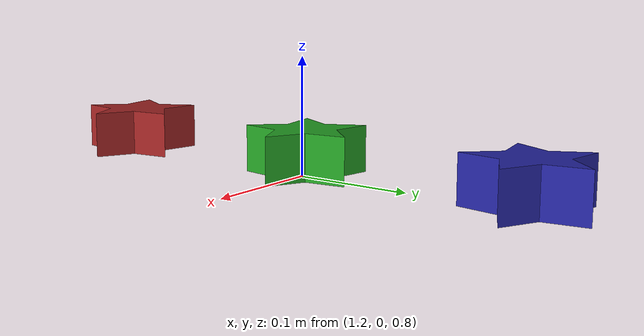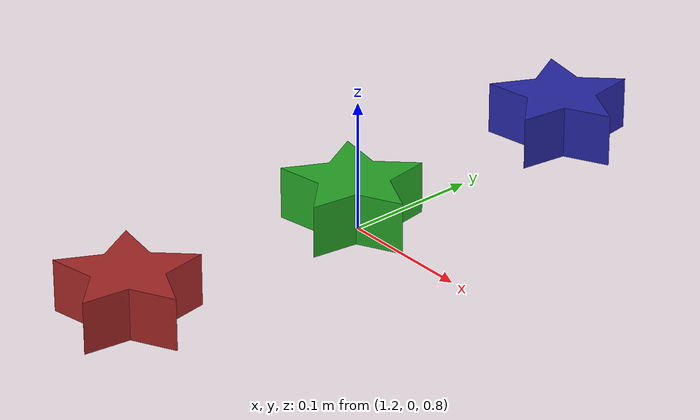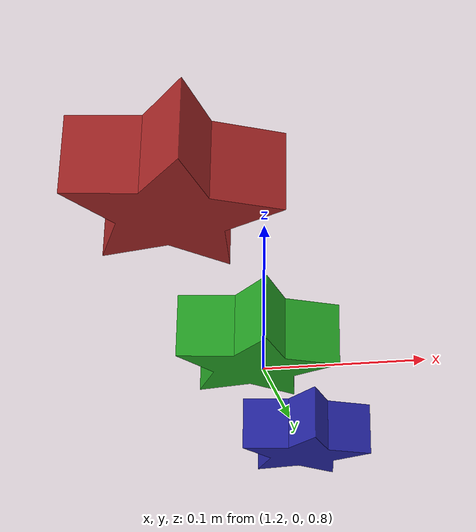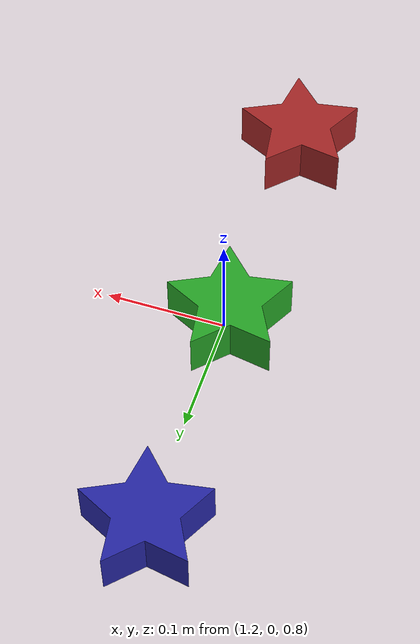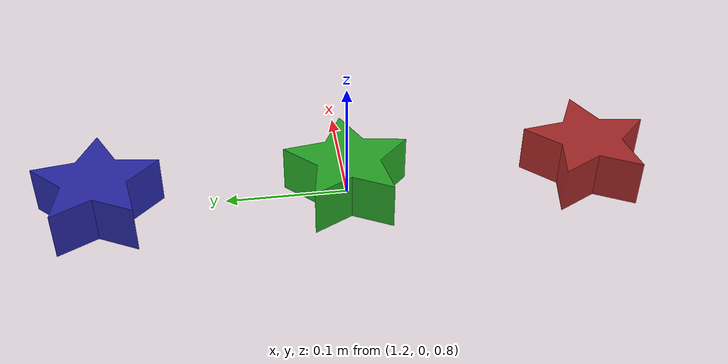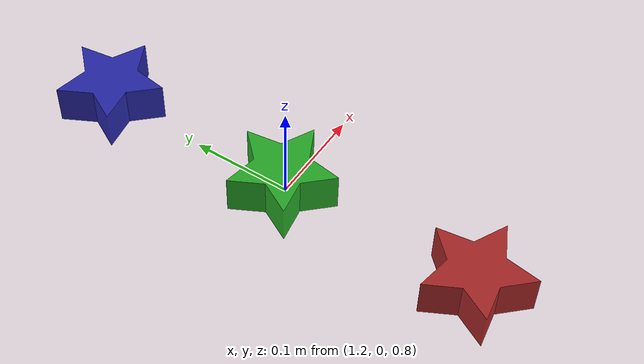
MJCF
<mujoco model="obj_star">
  <default>
    <default class="obj_star_visual">
      <geom group="2" type="mesh" contype="0" conaffinity="0"/>
    </default>
    <default class="obj_star_collision">
      <geom group="3" type="mesh"/>
    </default>
  </default>
  <asset>
    <mesh file="obj_star.obj" scale="0.005 0.005 0.002"/>
    <mesh file="obj_star_collision_0.obj" scale="0.005 0.005 0.002"/>
    <mesh file="obj_star_collision_1.obj" scale="0.005 0.005 0.002"/>
    <mesh file="obj_star_collision_2.obj" scale="0.005 0.005 0.002"/>
    <mesh file="obj_star_collision_3.obj" scale="0.005 0.005 0.002"/>
    <mesh file="obj_star_collision_4.obj" scale="0.005 0.005 0.002"/>
    <mesh file="obj_star_collision_5.obj" scale="0.005 0.005 0.002"/>
    <mesh file="obj_star_collision_6.obj" scale="0.005 0.005 0.002"/>
    <mesh file="obj_star_collision_7.obj" scale="0.005 0.005 0.002"/>
    <mesh file="obj_star_collision_8.obj" scale="0.005 0.005 0.002"/>
    <mesh file="obj_star_collision_9.obj" scale="0.005 0.005 0.002"/>
    <mesh file="obj_star_collision_10.obj" scale="0.005 0.005 0.002"/>
    <mesh file="obj_star_collision_11.obj" scale="0.005 0.005 0.002"/>
  </asset>

  <worldbody>
    <body name="obj_star_green" pos="1.2 0 0.8">
      <freejoint/>
      <geom mesh="obj_star" class="obj_star_visual" rgba="0.15 0.65 0.15 1"/>
      <geom mesh="obj_star_collision_0" class="obj_star_collision"/>
      <geom mesh="obj_star_collision_1" class="obj_star_collision"/>
      <geom mesh="obj_star_collision_2" class="obj_star_collision"/>
      <geom mesh="obj_star_collision_3" class="obj_star_collision"/>
      <geom mesh="obj_star_collision_4" class="obj_star_collision"/>
      <geom mesh="obj_star_collision_5" class="obj_star_collision"/>
      <geom mesh="obj_star_collision_6" class="obj_star_collision"/>
      <geom mesh="obj_star_collision_7" class="obj_star_collision"/>
      <geom mesh="obj_star_collision_8" class="obj_star_collision"/>
      <geom mesh="obj_star_collision_9" class="obj_star_collision"/>
      <geom mesh="obj_star_collision_10" class="obj_star_collision"/>
      <geom mesh="obj_star_collision_11" class="obj_star_collision"/>
    </body>

    <body name="obj_star_red" pos="1.2 -0.2 0.8">
      <freejoint/>
      <geom mesh="obj_star" class="obj_star_visual" rgba="0.65 0.15 0.15 1"/>
      <geom mesh="obj_star_collision_0" class="obj_star_collision"/>
      <geom mesh="obj_star_collision_1" class="obj_star_collision"/>
      <geom mesh="obj_star_collision_2" class="obj_star_collision"/>
      <geom mesh="obj_star_collision_3" class="obj_star_collision"/>
      <geom mesh="obj_star_collision_4" class="obj_star_collision"/>
      <geom mesh="obj_star_collision_5" class="obj_star_collision"/>
      <geom mesh="obj_star_collision_6" class="obj_star_collision"/>
      <geom mesh="obj_star_collision_7" class="obj_star_collision"/>
      <geom mesh="obj_star_collision_8" class="obj_star_collision"/>
      <geom mesh="obj_star_collision_9" class="obj_star_collision"/>
      <geom mesh="obj_star_collision_10" class="obj_star_collision"/>
      <geom mesh="obj_star_collision_11" class="obj_star_collision"/>
    </body>

    <body name="obj_star_blue" pos="1.2 0.2 0.8">
      <freejoint/>
      <geom mesh="obj_star" class="obj_star_visual" rgba="0.15 0.15 0.65 1"/>
      <geom mesh="obj_star_collision_0" class="obj_star_collision"/>
      <geom mesh="obj_star_collision_1" class="obj_star_collision"/>
      <geom mesh="obj_star_collision_2" class="obj_star_collision"/>
      <geom mesh="obj_star_collision_3" class="obj_star_collision"/>
      <geom mesh="obj_star_collision_4" class="obj_star_collision"/>
      <geom mesh="obj_star_collision_5" class="obj_star_collision"/>
      <geom mesh="obj_star_collision_6" class="obj_star_collision"/>
      <geom mesh="obj_star_collision_7" class="obj_star_collision"/>
      <geom mesh="obj_star_collision_8" class="obj_star_collision"/>
      <geom mesh="obj_star_collision_9" class="obj_star_collision"/>
      <geom mesh="obj_star_collision_10" class="obj_star_collision"/>
      <geom mesh="obj_star_collision_11" class="obj_star_collision"/>
    </body>
  </worldbody>
</mujoco>
